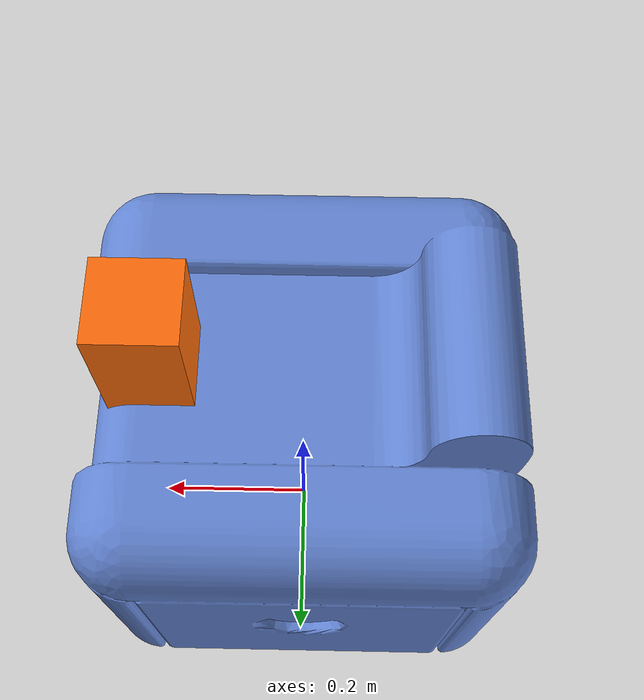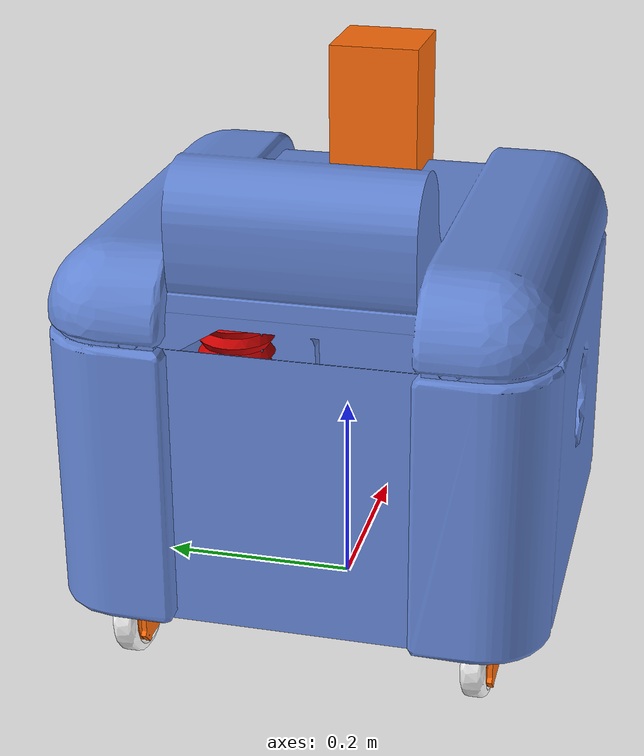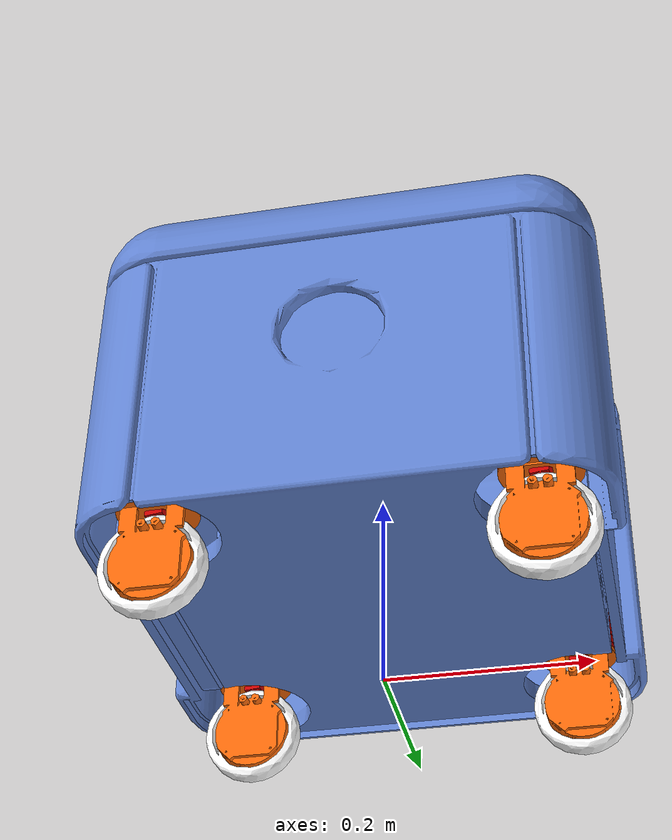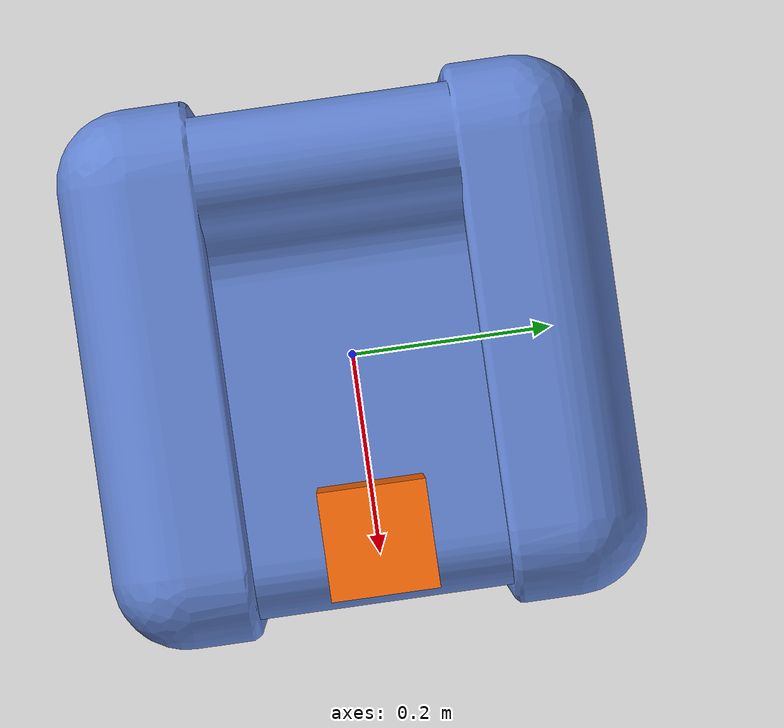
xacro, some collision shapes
<?xml version="1.0"?>
<robot xmlns:xacro="http://ros.org/wiki/xacro" name="Blue" >

    <xacro:arg name="model_dir" default="$(find tuw_gazebo_models)/models/platforms/blue"/>

    <!-- Import colors (for Rviz)-->
    <xacro:include filename="$(find tuw_gazebo_models)/models/materials.xacro" />

    <!-- Import robot -->
    <xacro:property name="model_dir" value="$(arg model_dir)/blue_body"/>
    <xacro:include filename="${model_dir}/body.xacro"/>
    <xacro:BlueBody name="body" parent="base" mesh_collis="simplified" mesh_visual="detailed"/><!-- simplified detailed empty-->

    <!-- Import platform plugins -->
    <xacro:property name="model_dir" value="$(arg model_dir)"/>
    <xacro:include filename="${model_dir}/blue_plugins.xacro" />
    <xacro:BlueGazeboRosModelBridgePlugin />

    <!-- Laser -->
    <xacro:property name="model_dir" value="$(find tuw_gazebo_models)/models/sensors/laser"/>
    <xacro:include filename="${model_dir}/Sick-LMS100.xacro"/>
    <xacro:laser name="front_laser" frame_names="front_laser" topic_names="front_laser/scan" parent="base_link" xyz="0.16 0 0.4" rpy="0 0 0" driver="cpu"  visualize="true"/>

</robot>

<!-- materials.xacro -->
<robot xmlns:xacro="http://ros.org/wiki/xacro">

  <material name="black">
    <color rgba="0.0 0.0 0.0 1.0"/>
  </material>

  <material name="blue">
    <color rgba="0.0 0.0 0.8 1.0"/>
  </material>

  <material name="light_blue">
    <color rgba="${100/255} ${134/255} ${213/255} 1.0"/>
  </material>

  <material name="green">
    <color rgba="0.0 0.8 0.0 1.0"/>
  </material>

  <material name="light_grey">
    <color rgba="0.5 0.5 0.5 1.0"/>
  </material>

  <material name="grey">
    <color rgba="0.2 0.2 0.2 1.0"/>
  </material>

  <material name="orange">
    <color rgba="${255/255} ${108/255} ${10/255} 1.0"/>
  </material>

  <material name="brown">
    <color rgba="${222/255} ${207/255} ${195/255} 1.0"/>
  </material>

  <material name="red">
    <color rgba="0.8 0.0 0.0 1.0"/>
  </material>

  <material name="white">
    <color rgba="1.0 1.0 1.0 1.0"/>
  </material>

</robot>

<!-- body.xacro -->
<robot xmlns:xacro="http://ros.org/wiki/xacro">

<xacro:include filename="chassis.xacro"/>
<xacro:include filename="piston_steering_wheel.xacro"/>

<xacro:macro name="BlueBody" params="name parent mesh_collis mesh_visual" >

    <!-- base_link -->
    <link name="${parent}_link"/>

    <!-- Chassis -->
    <xacro:BlueChassis name="${name}" parent="${parent}"/>

    <!-- Piston-Steering-Wheel modules -->
    <Piston_SteerMnt_Steer_WheelMnt_Wheel fb="F" lr="R" parent="${name}" TransDirX= "1" TransDirY="-1" RotYaw="0"/>
    <Piston_SteerMnt_Steer_WheelMnt_Wheel fb="F" lr="L" parent="${name}" TransDirX= "1" TransDirY= "1" RotYaw="0"/>
    <Piston_SteerMnt_Steer_WheelMnt_Wheel fb="B" lr="L" parent="${name}" TransDirX="-1" TransDirY= "1" RotYaw="0"/>
    <Piston_SteerMnt_Steer_WheelMnt_Wheel fb="B" lr="R" parent="${name}" TransDirX="-1" TransDirY="-1" RotYaw="0"/>

</xacro:macro>

</robot>

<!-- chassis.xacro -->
<robot xmlns:xacro="http://ros.org/wiki/xacro">

<xacro:include filename="$(find tuw_gazebo_models)/models/inertia_tensors.xacro"/>

<xacro:macro name="BlueChassis" params="name parent mesh_collis:=^|simplified mesh_visual:=^|detailed model_dir:=^" >

    <xacro:property name="ParrentLink2ThisLink"> <!--parrent link to this joint tf-->
	<origin xyz="0 0 0.07" rpy="0 0 0"/>
    </xacro:property>

    <xacro:property name="ThisLink2Inert"> <!--this link 2 inertial center tf, mass data-->
	<box_inertial_with_origin x="0.5" y="0.5"  z="0.4" mass="25"> <origin xyz="0 0 0.2" rpy="0 0 0"/> </box_inertial_with_origin>
    </xacro:property>

    <xacro:property name="ThisLink2STL"> <!--this link 2 mesh center tf, file-->
	<origin xyz="0 0   0" rpy="${pi/2} 0 ${pi/2}"/>
	<geometry> <mesh filename="file://${model_dir}/meshes/mobile_base_red.stl"/> </geometry>
	<material name="light_blue"/>
    </xacro:property>

    <xacro:property name="ThisLink2XML"> <!--this link 2 simple mesh center tf, file-->
	<origin xyz="0 0 0.20" rpy="0 0 0"/>
	<geometry> <box size="0.5 0.5 0.4" /> </geometry>
	<material name="light_blue"/>
    </xacro:property>

    <!-- choosing the appropriate collision and visual mesh -->
    <xacro:property name="ThisVisual"> <box size="0.0001 0.0001 0.0001" /> </xacro:property><!--no mesh-->
    <xacro:property name="ThisCollis"> <box size="0.0001 0.0001 0.0001" /> </xacro:property><!--no mesh-->
    <xacro:if value="${mesh_visual ==   'detailed'}"> <xacro:property name="ThisVisual">  <xacro:insert_block name="ThisLink2STL"/> </xacro:property> </xacro:if><!--detailed stl mesh-->
    <xacro:if value="${mesh_collis ==   'detailed'}"> <xacro:property name="ThisCollis">  <xacro:insert_block name="ThisLink2STL"/> </xacro:property> </xacro:if><!--detailed stl mesh-->
    <xacro:if value="${mesh_visual == 'simplified'}"> <xacro:property name="ThisVisual">  <xacro:insert_block name="ThisLink2XML"/> </xacro:property> </xacro:if><!--minimalist mesh-->
    <xacro:if value="${mesh_collis == 'simplified'}"> <xacro:property name="ThisCollis">  <xacro:insert_block name="ThisLink2XML"/> </xacro:property> </xacro:if><!--minimalist mesh-->

    <!-- joint and link definition -->
    <joint name="${parent}2${name}_joint" type="fixed">
	<parent link="${parent}_link"/>
	<child  link="${name}_link" />
	<xacro:insert_block name="ParrentLink2ThisLink" />
    </joint>

    <link name="${name}_link">
	<xacro:insert_block name="ThisLink2Inert"/>
	<visual>    <xacro:insert_block name="ThisVisual"/> </visual>
	<collision> <xacro:insert_block name="ThisCollis"/> </collision>
    </link>
    <gazebo reference="${name}_link">
	<material>Gazebo/LightBlueLaser</material>
	<selfCollide>false</selfCollide>
    </gazebo>

</xacro:macro>

</robot>

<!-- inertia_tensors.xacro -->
<robot xmlns:xacro="http://ros.org/wiki/xacro">
  <xacro:property name="M_PI" value="3.1415926535897931" />

  <!-- Thanks to Martin Guenther
  see https://github.com/uos/uos_tools/blob/fuerte/uos_common_urdf/common.xacro and
  see http://answers.gazebosim.org/question/4372/the-inertia-matrix-explained/ -->
  <!-- see https://secure.wikimedia.org/wikipedia/en/wiki/List_of_moment_of_inertia_tensors -->

  <!-- #################### versions without origin #################### -->
  <xacro:macro name="sphere_inertial" params="radius mass">
    <inertial>
      <mass value="${mass}" />
      <origin xyz="0 0 0" />
      <inertia ixx="${0.4 * mass * radius * radius}" ixy="0.0" ixz="0.0"
        iyy="${0.4 * mass * radius * radius}" iyz="0.0"
        izz="${0.4 * mass * radius * radius}" />
    </inertial>
  </xacro:macro>

  <xacro:macro name="cylinder_inertial" params="radius length mass">
    <inertial>
      <mass value="${mass}" />
      <origin xyz="0 0 0" />
      <inertia ixx="${0.0833333 * mass * (3 * radius * radius + length * length)}" ixy="0.0" ixz="0.0"
        iyy="${0.0833333 * mass * (3 * radius * radius + length * length)}" iyz="0.0"
        izz="${0.5 * mass * radius * radius}" />
    </inertial>
  </xacro:macro>

  <xacro:macro name="box_inertial" params="x y z mass">
    <inertial>
      <mass value="${mass}" />
      <origin xyz="0 0 0" />
      <inertia ixx="${0.0833333 * mass * (y*y + z*z)}" ixy="0.0" ixz="0.0"
        iyy="${0.0833333 * mass * (x*x + z*z)}" iyz="0.0"
        izz="${0.0833333 * mass * (x*x + y*y)}" />
    </inertial>
  </xacro:macro>

  <!-- #################### versions with origin #################### -->
  <xacro:macro name="sphere_inertial_with_origin" params="radius mass *origin">
    <inertial>
      <mass value="${mass}" />
      <xacro:insert_block name="origin" />
      <inertia ixx="${0.4 * mass * radius * radius}" ixy="0.0" ixz="0.0"
        iyy="${0.4 * mass * radius * radius}" iyz="0.0"
        izz="${0.4 * mass * radius * radius}" />
    </inertial>
  </xacro:macro>

  <xacro:macro name="cylinder_inertial_with_origin" params="radius length mass xyz rpy">
    <inertial>
      <mass value="${mass}" />
      <origin xyz="${xyz}" rpy="${rpy}" />
      <inertia ixx="${0.0833333 * mass * (3 * radius * radius + length * length)}" ixy="0.0" ixz="0.0"
        iyy="${0.0833333 * mass * (3 * radius * radius + length * length)}" iyz="0.0"
        izz="${0.5 * mass * radius * radius}" />
    </inertial>
  </xacro:macro>

  <xacro:macro name="box_inertial_with_origin" params="x y z mass xyz">
    <inertial>
      <mass value="${mass}" />
      <origin xyz="${xyz}" />
      <inertia ixx="${0.0833333 * mass * (y*y + z*z)}" ixy="0.0" ixz="0.0"
        iyy="${0.0833333 * mass * (x*x + z*z)}" iyz="0.0"
        izz="${0.0833333 * mass * (x*x + y*y)}" />
    </inertial>
  </xacro:macro>

</robot>

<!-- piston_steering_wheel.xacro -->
<robot xmlns:xacro="http://ros.org/wiki/xacro" name="BluePSSW" >

<xacro:include filename="piston.xacro"/>
<xacro:include filename="steering_mount.xacro"/>
<xacro:include filename="wheel_mount.xacro"/>
<xacro:include filename="wheel.xacro"/>

<xacro:macro name="Piston_SteerMnt_Steer_WheelMnt_Wheel" params="fb lr parent TransDirX TransDirY RotYaw"> <!--fb : front, back ; lr: left, right -->

	<xacro:property name="piston_name"         value="piston" />
	<xacro:property name="steering_mount_name" value="steermnt" />
	<xacro:property name="wheel_mount_name"    value="wheelmnt" />
	<xacro:property name="wheel_name"          value="wheel" />

	<xacro:BluePiston        name="${piston_name}"         fb="${fb}" lr="${lr}" parent="${parent}" TransDirX="${TransDirX}" TransDirY="${TransDirY}" RotYaw="${RotYaw}"/>
	<xacro:BlueSteeringMount name="${steering_mount_name}" fb="${fb}" lr="${lr}" parent="${piston_name}"        />
	<xacro:BlueWheelMount    name="${wheel_mount_name}"    fb="${fb}" lr="${lr}" parent="${steering_mount_name}"/>
	<xacro:BlueWheel         name="${wheel_name}"          fb="${fb}" lr="${lr}" parent="${wheel_mount_name}"   wheel_radius="0.05" wheel_length="0.0005"/>

</xacro:macro>

</robot>

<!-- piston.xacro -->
<robot xmlns:xacro="http://ros.org/wiki/xacro">

<xacro:include filename="$(find tuw_gazebo_models)/models/inertia_tensors.xacro"/>

<xacro:macro name="BluePiston" params="name parent fb lr TransDirX TransDirY RotYaw mesh_collis:=^|simplified mesh_visual:=^|detailed model_dir:=^">

    <xacro:property name="x_ParrentLink2Piston_Link"  value="0.1750" />
    <xacro:property name="y_ParrentLink2Piston_Link"  value="0.1744" />
    <xacro:property name="z_ParrentLink2Piston_Link"  value="0.3400" />

    <xacro:property name="ParrentLink2ThisLink"> <!--parrent link to this joint tf-->
	<origin xyz="${x_ParrentLink2Piston_Link*TransDirX} ${y_ParrentLink2Piston_Link*TransDirY} ${z_ParrentLink2Piston_Link}"  rpy="0 0 ${RotYaw-pi/2}"/>
    </xacro:property>

    <xacro:property name="ThisLink2Inert"> <!--this link 2 inertial center tf, mass data-->
	<cylinder_inertial_with_origin radius="0.02" length="0.25" mass="0.1"> <origin xyz="0 0 -0.125" rpy="0 0 0"/> </cylinder_inertial_with_origin>
    </xacro:property>

    <xacro:property name="ThisLink2STL"> <!--this link 2 mesh center tf, file-->
	<origin xyz="0 0 0.125" rpy="${pi/2} 0 ${pi/2}"/>
	<geometry> <mesh filename="file://${model_dir}/meshes/piston_and_slides_red.stl"/> </geometry>
	<material name="grey"/>
    </xacro:property>

    <xacro:property name="ThisLink2XML"> <!--this link 2 simple mesh center tf, file-->
	<origin xyz="0 0 -0.125" rpy="0 0 0"/>
	<geometry> <cylinder length="0.25" radius="0.02"/> </geometry>
	<material name="grey"/>
    </xacro:property>

    <!-- choosing the appropriate collision and visual mesh -->
    <xacro:property name="ThisVisual"> <box size="0.0001 0.0001 0.0001" /> </xacro:property><!--no mesh-->
    <xacro:property name="ThisCollis"> <box size="0.0001 0.0001 0.0001" /> </xacro:property><!--no mesh-->
    <xacro:if value="${mesh_visual ==   'detailed'}"> <xacro:property name="ThisVisual">  <xacro:insert_block name="ThisLink2STL"/> </xacro:property> </xacro:if><!--detailed stl mesh-->
    <xacro:if value="${mesh_collis ==   'detailed'}"> <xacro:property name="ThisCollis">  <xacro:insert_block name="ThisLink2STL"/> </xacro:property> </xacro:if><!--detailed stl mesh-->
    <xacro:if value="${mesh_visual == 'simplified'}"> <xacro:property name="ThisVisual">  <xacro:insert_block name="ThisLink2XML"/> </xacro:property> </xacro:if><!--minimalist mesh-->
    <xacro:if value="${mesh_collis == 'simplified'}"> <xacro:property name="ThisCollis">  <xacro:insert_block name="ThisLink2XML"/> </xacro:property> </xacro:if><!--minimalist mesh-->

    <!-- joint and link definition -->
    <joint name="${parent}2${name}${fb}${lr}_joint" type="fixed">
	<parent link="${parent}_link"/>
	<child  link="${name}${fb}${lr}_link" />
	<xacro:insert_block name="ParrentLink2ThisLink" />
    </joint>

    <link name="${name}${fb}${lr}_link">
	<xacro:insert_block name="ThisLink2Inert"/>
	<visual>    <xacro:insert_block name="ThisVisual"/> </visual>
	<collision> <xacro:insert_block name="ThisCollis"/> </collision>
    </link>
    <gazebo reference="${name}${fb}${lr}_link">
	<material>Gazebo/Grey</material>
	<selfCollide>false</selfCollide>
    </gazebo>

</xacro:macro>

</robot>

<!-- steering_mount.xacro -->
<robot xmlns:xacro="http://ros.org/wiki/xacro">

<xacro:include filename="$(find tuw_gazebo_models)/models/inertia_tensors.xacro"/>

<xacro:macro name="BlueSteeringMount" params="name parent fb lr mesh_collis:=^|simplified mesh_visual:=^|detailed model_dir:=^">

    <xacro:property name="ParrentLink2ThisLink"> <!--parrent link to this joint tf-->
	<origin xyz="0 0 ${-0.309-0.060}"  rpy="0 0 0"/>
    </xacro:property>

    <xacro:property name="ThisLink2Inert"> <!--this link 2 inertial center tf, mass data-->
	<cylinder_inertial_with_origin radius="0.04" length="0.1666" mass="0.251"> <origin xyz="0 0 ${-0.23+0.309+0.060}" rpy="0 0 0"/> </cylinder_inertial_with_origin>
    </xacro:property>

    <xacro:property name="ThisLink2STL"> <!--this link 2 mesh center tf, file-->
	<origin xyz="0 0 ${+0.309-0.371+0.060}" rpy="${-pi/2} 0 0"/>
	<geometry> <mesh filename="file://${model_dir}/meshes/steering_mount_red.stl"/> </geometry>
	<material name="red"/>
    </xacro:property>

    <xacro:property name="ThisLink2XML"> <!--this link 2 simple mesh center tf, file-->
	<origin xyz="0 0 ${-0.23+0.309+0.060}" rpy="0 0 0"/>
	<geometry> <cylinder length="0.1666" radius="0.04"/> </geometry>
	<material name="red"/>
    </xacro:property>

    <!-- choosing the appropriate collision and visual mesh -->
    <xacro:property name="ThisVisual"> <box size="0.0001 0.0001 0.0001" /> </xacro:property><!--no mesh-->
    <xacro:property name="ThisCollis"> <box size="0.0001 0.0001 0.0001" /> </xacro:property><!--no mesh-->
    <xacro:if value="${mesh_visual ==   'detailed'}"> <xacro:property name="ThisVisual">  <xacro:insert_block name="ThisLink2STL"/> </xacro:property> </xacro:if><!--detailed stl mesh-->
    <xacro:if value="${mesh_collis ==   'detailed'}"> <xacro:property name="ThisCollis">  <xacro:insert_block name="ThisLink2STL"/> </xacro:property> </xacro:if><!--detailed stl mesh-->
    <xacro:if value="${mesh_visual == 'simplified'}"> <xacro:property name="ThisVisual">  <xacro:insert_block name="ThisLink2XML"/> </xacro:property> </xacro:if><!--minimalist mesh-->
    <xacro:if value="${mesh_collis == 'simplified'}"> <xacro:property name="ThisCollis">  <xacro:insert_block name="ThisLink2XML"/> </xacro:property> </xacro:if><!--minimalist mesh-->

    <!-- joint and link definition -->
    <joint name="${parent}${fb}${lr}2${name}${fb}${lr}_joint" type="fixed"><!--prismatic-->
	<parent link="${parent}${fb}${lr}_link"/>
	<child  link="${name}${fb}${lr}_link"/>
	<axis   xyz="0 0 1"/>
	<!--limit effort= "10" velocity="0.55" lower= "-0.17" upper="0.0"/-->
	<!--dynamics damping="0.0" friction="0.0"/-->
	<xacro:insert_block name="ParrentLink2ThisLink" />
    </joint>

    <link name="${name}${fb}${lr}_link">
	<xacro:insert_block name="ThisLink2Inert"/>
	<visual>    <xacro:insert_block name="ThisVisual"/> </visual>
	<collision> <xacro:insert_block name="ThisCollis"/> </collision>
    </link>
    <gazebo reference="${name}${fb}${lr}_link">
	<material>Gazebo/Red</material>
	<selfCollide>false</selfCollide>
    </gazebo>

</xacro:macro>

</robot>

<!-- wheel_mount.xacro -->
<robot xmlns:xacro="http://ros.org/wiki/xacro">

<xacro:include filename="$(find tuw_gazebo_models)/models/inertia_tensors.xacro"/>

<xacro:macro name="BlueWheelMount" params="name parent fb lr mesh_collis:=^|simplified mesh_visual:=^|detailed model_dir:=^">

    <xacro:property name="ParrentLink2ThisLink"> <!--parrent link to this joint tf-->
	<origin xyz="0 0 0"  rpy="0 0 0"/>
    </xacro:property>

    <xacro:property name="ThisLink2Inert"> <!--this link 2 inertial center tf, mass data-->
	<cylinder_inertial_with_origin radius="0.05" length="0.025" mass="0.197"> <origin xyz="0 0 0" rpy="0 ${-pi/2} 0"/> </cylinder_inertial_with_origin>
    </xacro:property>

    <xacro:property name="ThisLink2STL"> <!--this link 2 mesh center tf, file-->
	<origin xyz="0 0 0" rpy="${-pi/2} 0 0"/>
	<geometry> <mesh filename="file://${model_dir}/meshes/wheel_mount_red.stl"/> </geometry>
	<material name="orange"/>
    </xacro:property>

    <xacro:property name="ThisLink2XML"> <!--this link 2 simple mesh center tf, file-->
	<origin xyz="0 0 0" rpy="${-pi/2} 0 0"/>
	<geometry> <box size="0.0001 0.0001 0.0001" /> </geometry>
	<material name="orange"/>
    </xacro:property>

    <!-- choosing the appropriate collision and visual mesh -->
    <xacro:property name="ThisVisual"> <box size="0.0001 0.0001 0.0001" /> </xacro:property><!--no mesh-->
    <xacro:property name="ThisCollis"> <box size="0.0001 0.0001 0.0001" /> </xacro:property><!--no mesh-->
    <xacro:if value="${mesh_visual ==   'detailed'}"> <xacro:property name="ThisVisual">  <xacro:insert_block name="ThisLink2STL"/> </xacro:property> </xacro:if><!--detailed stl mesh-->
    <xacro:if value="${mesh_collis ==   'detailed'}"> <xacro:property name="ThisCollis">  <xacro:insert_block name="ThisLink2STL"/> </xacro:property> </xacro:if><!--detailed stl mesh-->
    <xacro:if value="${mesh_visual == 'simplified'}"> <xacro:property name="ThisVisual">  <xacro:insert_block name="ThisLink2XML"/> </xacro:property> </xacro:if><!--minimalist mesh-->
    <xacro:if value="${mesh_collis == 'simplified'}"> <xacro:property name="ThisCollis">  <xacro:insert_block name="ThisLink2XML"/> </xacro:property> </xacro:if><!--minimalist mesh-->

    <!-- joint and link definition -->
    <joint name="${parent}${fb}${lr}2${name}${fb}${lr}_joint" type="revolute"><!--revolute  continuous-->
	<parent link="${parent}${fb}${lr}_link"/>
	<child  link="${name}${fb}${lr}_link"/>
	<axis xyz=" 0 0 1"/>
	<limit effort="50" velocity="50" lower= "${-M_PI}" upper="${M_PI}" /> <!--velocity="5" -->
	<xacro:insert_block name="ParrentLink2ThisLink" />
	<!--dynamics damping="0.7"/-->
    </joint>

    <link name="${name}${fb}${lr}_link">
	<xacro:insert_block name="ThisLink2Inert"/>
	<visual>    <xacro:insert_block name="ThisVisual"/> </visual>
	<collision> <xacro:insert_block name="ThisCollis"/> </collision>
    </link>
    <gazebo reference="${name}${fb}${lr}_link">
	<material>Gazebo/Orange</material>
	<selfCollide>false</selfCollide>
    </gazebo>

</xacro:macro>

</robot>

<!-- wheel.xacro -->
<robot xmlns:xacro="http://ros.org/wiki/xacro">

<xacro:include filename="$(find tuw_gazebo_models)/models/inertia_tensors.xacro"/>

<xacro:macro name="BlueWheel" params="name parent fb lr wheel_radius wheel_length mesh_collis:=^|simplified mesh_visual:=^|detailed model_dir:=^">

    <xacro:property name="ParrentLink2ThisLink"> <!--parrent link to this joint tf-->
	<origin xyz="0 0 0"  rpy="${pi} ${pi/2} 0"/>
    </xacro:property>

    <xacro:property name="ThisLink2Inert"> <!--this link 2 inertial center tf, mass data-->
	<cylinder_inertial radius="${wheel_radius}" length="${wheel_length}" mass="0.197"/>
    </xacro:property>

    <xacro:property name="ThisLink2STL"> <!--this link 2 mesh center tf, file-->
	<origin xyz="0 0 0" rpy="0 ${pi/2} 0"/>
	<geometry> <mesh filename="file://${model_dir}/meshes/wheel_red.stl"/> </geometry>
	<material name="white"/>
    </xacro:property>

    <xacro:property name="ThisLink2XML"> <!--this link 2 simple mesh center tf, file-->
	<origin xyz="0 0 0" rpy="0 0 0"/>
	<geometry> <cylinder radius="${wheel_radius}" length="${wheel_length}" /> </geometry>
	<material name="white"/>
    </xacro:property>

    <!-- choosing the appropriate collision and visual mesh -->
    <xacro:property name="ThisVisual"> <xacro:insert_block name="ThisLink2XML"/> </xacro:property><!--minimalist mesh-->
    <xacro:property name="ThisCollis"> <xacro:insert_block name="ThisLink2XML"/> </xacro:property><!--minimalist mesh-->
    <xacro:if value="${mesh_visual ==   'detailed'}"> <xacro:property name="ThisVisual">  <xacro:insert_block name="ThisLink2STL"/> </xacro:property> </xacro:if><!--detailed stl mesh-->
    <xacro:if value="${mesh_collis ==   'detailed'}"> <xacro:property name="ThisCollis">  <xacro:insert_block name="ThisLink2STL"/> </xacro:property> </xacro:if><!--detailed stl mesh-->

    <!-- joint and link definition -->
    <joint name="${parent}${fb}${lr}2${name}${fb}${lr}_joint" type="continuous">
	<parent link="${parent}${fb}${lr}_link" />
	<child  link="${name}${fb}${lr}_link" />
	<axis   xyz="0 0 1"/>
	<xacro:insert_block name="ParrentLink2ThisLink" />
	<!--dynamics damping="0.7"/-->
    </joint>

    <link name="${name}${fb}${lr}_link">
	<xacro:insert_block name="ThisLink2Inert"/>
	<visual>    <xacro:insert_block name="ThisVisual"/> </visual>
	<collision> <xacro:insert_block name="ThisCollis"/> </collision>
    </link>
    <gazebo reference="${name}${fb}${lr}_link">
	<material>Gazebo/White</material>
	<selfCollide>false</selfCollide>
	<mu1 value="0.7"/>
	<mu2 value="0.7"/>

	<minDepth value="0.0002"/>
	<kp value="1000000.0"/>
	<kd value="10.0"/>
    </gazebo>

</xacro:macro>

</robot>

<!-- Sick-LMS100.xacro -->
<robot xmlns:xacro="http://ros.org/wiki/xacro">

<!-- Front Laser -->
<xacro:macro name="laser" params="name frame_names topic_names parent xyz rpy driver:=cpu visualize:=true model_dir:=^">

    <xacro:if value="${driver == 'gpu'}">
      <xacro:property name="sensor_type" value="gpu_ray"/>
      <xacro:property name="driver_type" value="libgazebo_ros_gpu_laser.so"/>
    </xacro:if>
    <xacro:if value="${driver == 'cpu'}">
      <xacro:property name="sensor_type" value="ray"/>
      <xacro:property name="driver_type" value="libgazebo_ros_laser.so"/>
    </xacro:if>

    <joint name="${parent}_${name}_chassis_joint" type="fixed">
	<axis xyz="0 0 1" />
	<origin xyz="${xyz}" rpy="${rpy}"/>
	<parent link="${parent}"/>
	<child link="${name}_chassis"/>
    </joint>

    <material name="SickBlue">
	<color rgba="${255/255} ${108/255} ${10/255} 1.0"/>
    </material>

    <link name="${name}_chassis">
	<collision>
	    <origin xyz="0 0 0.0751" rpy="0 0 0"/>
	    <geometry>
		<box size="0.094 0.094 0.152"/>
	    </geometry>
	</collision>
	<visual>
	    <geometry>
		<mesh filename="file://${model_dir}/meshes/Sick-LMS100.dae"/>
	    </geometry>
	    <material name="SickBlue"/>
	</visual>
	<xacro:box_inertial x="0.094" y="0.094"  z="0.152" mass="1.1" />
    </link>

    <joint name="${name}_chassis_${name}_joint" type="fixed">
	<axis xyz="0 0 1" />
	<origin xyz="0 0 0.115" rpy="0 0 0"/>
	<parent link="${name}_chassis"/>
	<child link="${name}"/>
    </joint>

    <link name="${name}"/>
    <gazebo reference="${name}">
	<sensor name="${name}" type="${sensor_type}">
	    <pose>0 0 0 0 0 0</pose>
	    <update_rate>25</update_rate>
	    <always_on>1</always_on>
	    <visualize>${visualize}</visualize>
	    <ray>
		<scan>
		    <horizontal>
			<!-- Sick-LMS100 has  683 steps with 0.35139 Degree resolution-->
			<resolution>1</resolution>
			<max_angle>2.356000000</max_angle> <min_angle>-2.356000000</min_angle> <samples>1080</samples>     <!-- 135 to -135 Degree -->
			<!-- 120 to -120 Degree -->
			<!-- 100 to -100 Degree -->
			<!-- 110 to -110 Degree -->
		    </horizontal>
		</scan>
		<range>
		    <min>0.15</min>
		    <max>20.0</max>
		    <resolution>0.01</resolution>
		</range>
		<noise>
		    <type>gaussian</type>
		    <mean>0.0</mean>
		    <stddev>0.005</stddev>
		</noise>
	    </ray>

	    <plugin name="gazebo_ros_laser_SICK_driver" filename="${driver_type}" >
		<rosDebugLevel>Debug</rosDebugLevel>
		<robotNamespace></robotNamespace>
		<topicName>${topic_names}</topicName>
		<frameName>${frame_names}</frameName>
		<rangeMin>0.4</rangeMin>
	    </plugin>
	</sensor>
    </gazebo>
</xacro:macro>

</robot>
